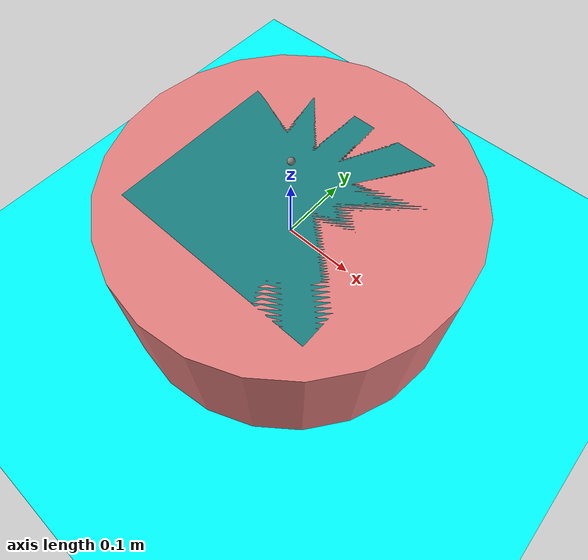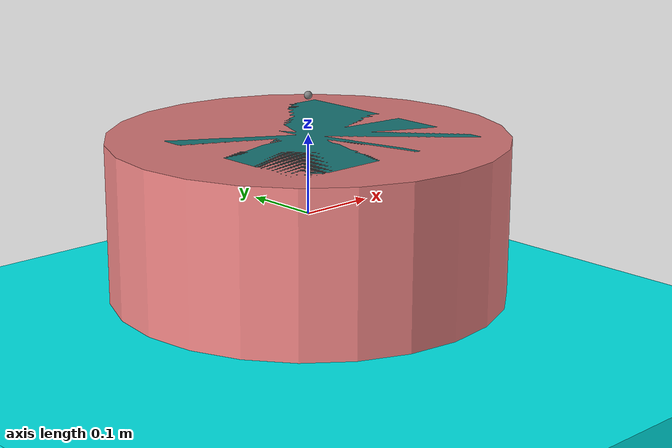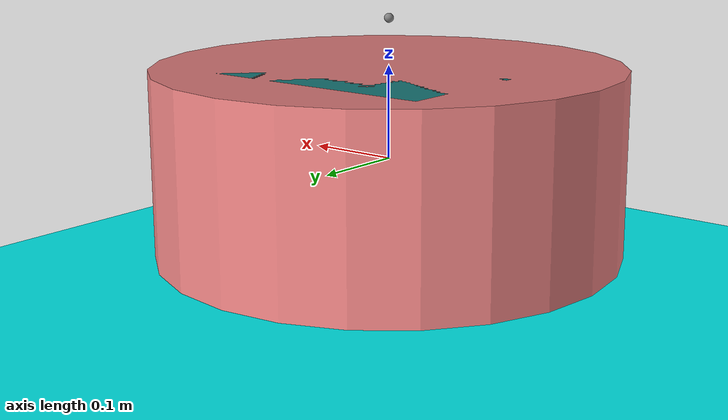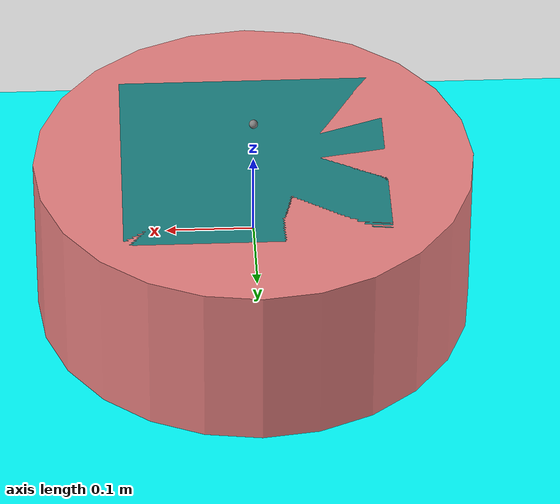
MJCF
<mujoco model="box_push">
  <option timestep="0.02" />

  <asset>
    <texture name="blue_grid" type="2d" builtin="checker" rgb1=".02 .14 .44" rgb2=".27 .55 1" width="300" height="300" mark="edge" markrgb="1 1 1"/>
    <material name="blue_grid" texture="blue_grid" texrepeat="1 1" texuniform="true" reflectance=".2"/>
  </asset>

  <default>
    <default class="slider">
      <position kp="10" ctrlrange="-10 10" forcerange="-1000 1000"/>
    </default>
  </default>

  <worldbody>
    <body>
      <geom mass="0" name="floor" pos="0 0 -0.25" condim="3" size="10.0 10.0 0.10" rgba="0 1 1 1" type="box" material="blue_grid"/>
    </body>

    <body name="pusher" pos="0 0 0">
      <joint name="slider_x" damping="4" type="slide" axis="1 0 0" />
      <joint name="slider_y" damping="4" type="slide" axis="0 1 0" />
      <geom name="pusher" type="cylinder" size="0.25 0.1" mass="1" rgba=".9 .5 .5 1" friction="0"/>
      <site pos="0 0 0.15" name="pusher_site"/>
    </body>

    <body name="cart" pos="0 0 0">
      <joint name="slider_cart_x" damping="4" type="slide" axis="1 0 0" />
      <joint name="slider_cart_y" damping="4" type="slide" axis="0 1 0" />
      <joint name="cart_rotation" damping="1" type="hinge" axis="0 0 1" />
      <geom name="cart" type="box" size="0.15 0.15 0.1" mass="1" rgba=".1 .5 .5 1" friction="0"/>
      <site pos="0 0 0.15" name="cart_site"/>
    </body>
  </worldbody>

  <actuator>
    <velocity name="actuator_pusher_x" joint="slider_x" class="slider" />
    <velocity name="actuator_pusher_y" joint="slider_y" class="slider" />
  </actuator>

  <sensor>
    <framepos name="trace_pusher" objtype="site" objname="pusher_site"/>
    <framepos name="trace_cart" objtype="site" objname="cart_site"/>
    <framequat name="cart_orientation" objtype="body" objname="cart"/>
  </sensor>

</mujoco>
